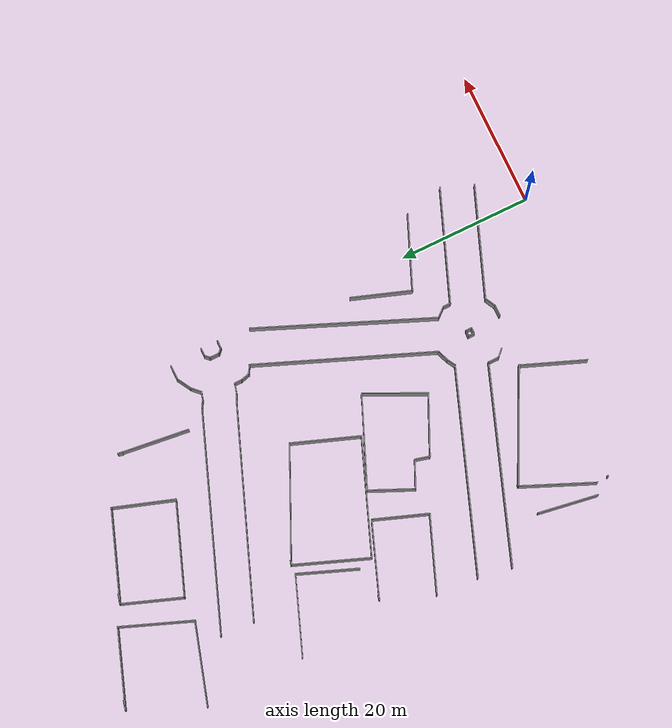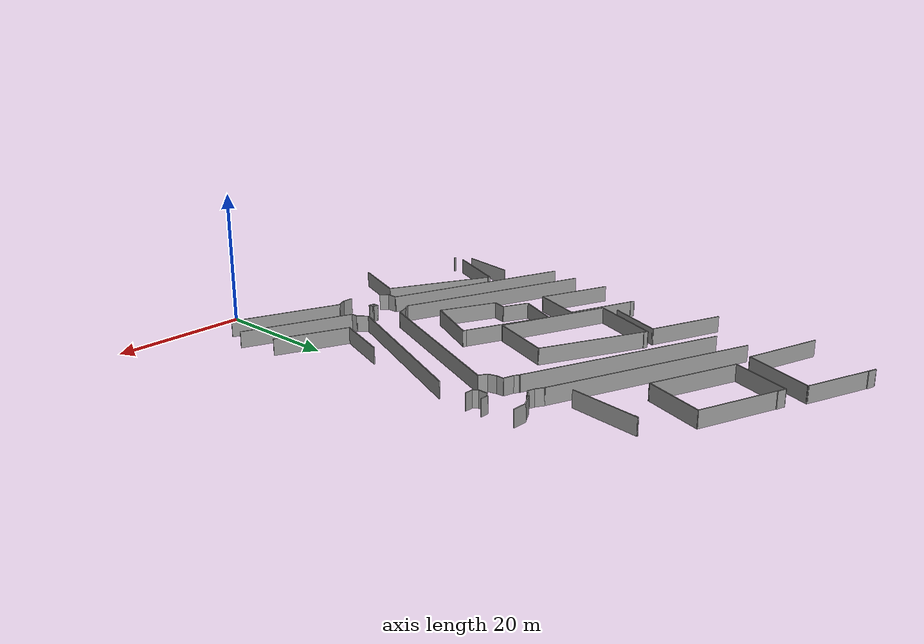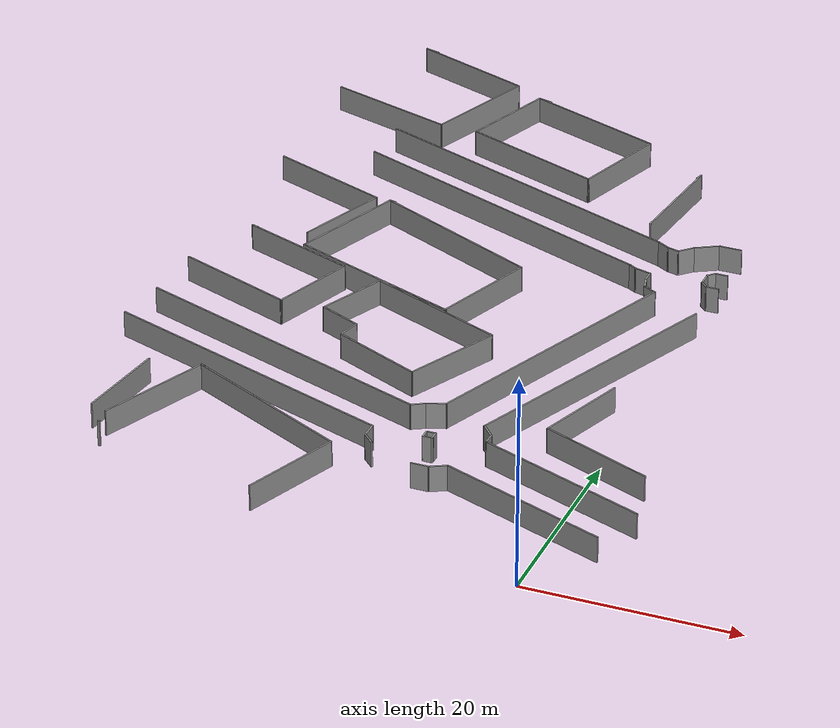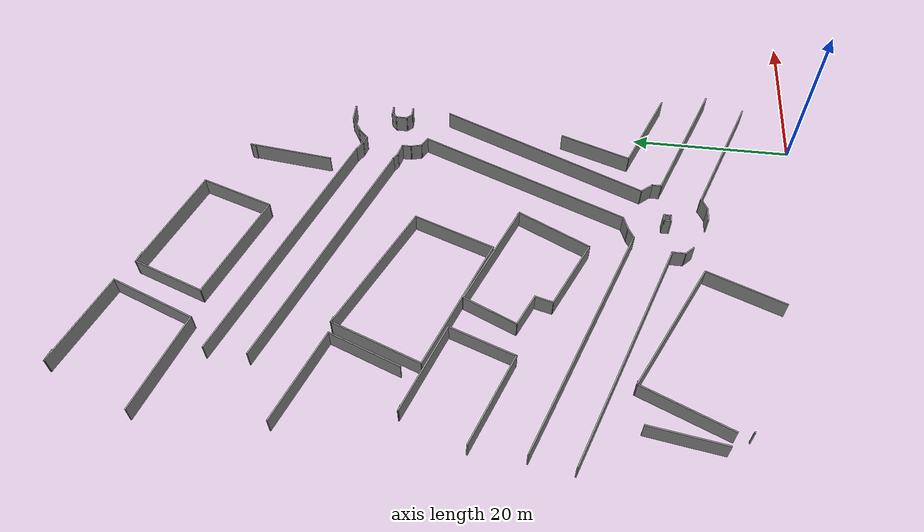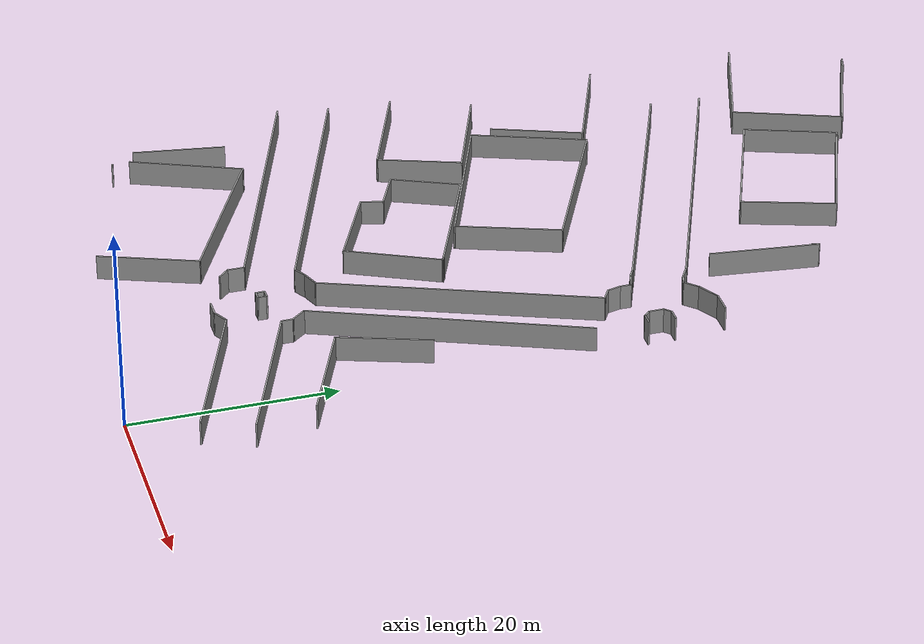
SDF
<sdf version="1.6">
 <model name="palazzo2">
  <pose>-3.81107 -3.99805 0 0 -0 0</pose>
  <link name="Wall_103">
   <collision name="Wall_103_Collision">
    <geometry><box><size>1.25 0.15 2.5</size></box></geometry>
    <pose>0 0 1.25 0 -0 0</pose>
   </collision>
   <visual name="Wall_103_Visual">
    <pose>0 0 1.25 0 -0 0</pose>
    <geometry><box><size>1.25 0.15 2.5</size></box></geometry>
    <material>
     <script><uri>file://media/materials/scripts/gazebo.material</uri><name>Gazebo/Grey</name></script>
     <ambient>1 1 1 1</ambient>
    </material>
    <meta><layer>0</layer></meta>
   </visual>
   <pose>3.65648 53.494 0 0 -0 3.14159</pose>
  </link>
  <link name="Wall_104">
   <collision name="Wall_104_Collision">
    <geometry><box><size>1 0.15 2.5</size></box></geometry>
    <pose>0 0 1.25 0 -0 0</pose>
   </collision>
   <visual name="Wall_104_Visual">
    <pose>0 0 1.25 0 -0 0</pose>
    <geometry><box><size>1 0.15 2.5</size></box></geometry>
    <material>
     <script><uri>file://media/materials/scripts/gazebo.material</uri><name>Gazebo/Grey</name></script>
     <ambient>1 1 1 1</ambient>
    </material>
    <meta><layer>0</layer></meta>
   </visual>
   <pose>2.80596 53.7945 0 0 -0 2.35619</pose>
  </link>
  <link name="Wall_105">
   <collision name="Wall_105_Collision">
    <geometry><box><size>1.55251 0.15 2.5</size></box></geometry>
    <pose>0 0 1.25 0 -0 0</pose>
   </collision>
   <visual name="Wall_105_Visual">
    <pose>0 0 1.25 0 -0 0</pose>
    <geometry><box><size>1.55251 0.15 2.5</size></box></geometry>
    <material>
     <script><uri>file://media/materials/scripts/gazebo.material</uri><name>Gazebo/Grey</name></script>
     <ambient>1 1 1 1</ambient>
    </material>
    <meta><layer>0</layer></meta>
   </visual>
   <pose>2.50446 54.7963 0 0 -0 1.5722</pose>
  </link>
  <link name="Wall_107">
   <collision name="Wall_107_Collision">
    <geometry><box><size>27.4393 0.15 2.5</size></box></geometry>
    <pose>0 0 1.25 0 -0 0</pose>
   </collision>
   <visual name="Wall_107_Visual">
    <pose>0 0 1.25 0 -0 0</pose>
    <geometry><box><size>27.4393 0.15 2.5</size></box></geometry>
    <material>
     <script><uri>file://media/materials/scripts/gazebo.material</uri><name>Gazebo/Grey</name></script>
     <ambient>1 1 1 1</ambient>
    </material>
    <meta><layer>0</layer></meta>
   </visual>
   <pose>-1.37579 35.8973 0 0 -0 1.17687</pose>
  </link>
  <link name="Wall_110">
   <collision name="Wall_110_Collision">
    <geometry><box><size>27.4433 0.15 2.5</size></box></geometry>
    <pose>0 0 1.25 0 -0 0</pose>
   </collision>
   <visual name="Wall_110_Visual">
    <pose>0 0 1.25 0 -0 0</pose>
    <geometry><box><size>27.4433 0.15 2.5</size></box></geometry>
    <material>
     <script><uri>file://media/materials/scripts/gazebo.material</uri><name>Gazebo/Grey</name></script>
     <ambient>1 1 1 1</ambient>
    </material>
    <meta><layer>0</layer></meta>
   </visual>
   <pose>-5.98467 38.1714 0 0 -0 1.18986</pose>
  </link>
  <link name="Wall_112">
   <collision name="Wall_112_Collision">
    <geometry><box><size>1.5 0.15 2.5</size></box></geometry>
    <pose>0 0 1.25 0 -0 0</pose>
   </collision>
   <visual name="Wall_112_Visual">
    <pose>0 0 1.25 0 -0 0</pose>
    <geometry><box><size>1.5 0.15 2.5</size></box></geometry>
    <material>
     <script><uri>file://media/materials/scripts/gazebo.material</uri><name>Gazebo/Grey</name></script>
     <ambient>1 1 1 1</ambient>
    </material>
    <meta><layer>0</layer></meta>
   </visual>
   <pose>-13.3123 24.552 0 0 -0 0.523599</pose>
  </link>
  <link name="Wall_113">
   <collision name="Wall_113_Collision">
    <geometry><box><size>1.92852 0.15 2.5</size></box></geometry>
    <pose>0 0 1.25 0 -0 0</pose>
   </collision>
   <visual name="Wall_113_Visual">
    <pose>0 0 1.25 0 -0 0</pose>
    <geometry><box><size>1.92852 0.15 2.5</size></box></geometry>
    <material>
     <script><uri>file://media/materials/scripts/gazebo.material</uri><name>Gazebo/Grey</name></script>
     <ambient>1 1 1 1</ambient>
    </material>
    <meta><layer>0</layer></meta>
   </visual>
   <pose>-11.893 25.1962 0 0 -0 0.352149</pose>
  </link>
  <link name="Wall_119">
   <collision name="Wall_119_Collision">
    <geometry><box><size>1.25 0.15 2.5</size></box></geometry>
    <pose>0 0 1.25 0 -0 0</pose>
   </collision>
   <visual name="Wall_119_Visual">
    <pose>0 0 1.25 0 -0 0</pose>
    <geometry><box><size>1.25 0.15 2.5</size></box></geometry>
    <material>
     <script><uri>file://media/materials/scripts/gazebo.material</uri><name>Gazebo/Grey</name></script>
     <ambient>1 1 1 1</ambient>
    </material>
    <meta><layer>0</layer></meta>
   </visual>
   <pose>-5.48076 21.4011 0 0 -0 1.5708</pose>
  </link>
  <link name="Wall_120">
   <collision name="Wall_120_Collision">
    <geometry><box><size>1.90927 0.15 2.5</size></box></geometry>
    <pose>0 0 1.25 0 -0 0</pose>
   </collision>
   <visual name="Wall_120_Visual">
    <pose>0 0 1.25 0 -0 0</pose>
    <geometry><box><size>1.90927 0.15 2.5</size></box></geometry>
    <material>
     <script><uri>file://media/materials/scripts/gazebo.material</uri><name>Gazebo/Grey</name></script>
     <ambient>1 1 1 1</ambient>
    </material>
    <meta><layer>0</layer></meta>
   </visual>
   <pose>-6.04681 22.6244 0 0 -0 2.26988</pose>
  </link>
  <link name="Wall_122">
   <collision name="Wall_122_Collision">
    <geometry><box><size>17.2432 0.15 2.5</size></box></geometry>
    <pose>0 0 1.25 0 -0 0</pose>
   </collision>
   <visual name="Wall_122_Visual">
    <pose>0 0 1.25 0 -0 0</pose>
    <geometry><box><size>17.2432 0.15 2.5</size></box></geometry>
    <material>
     <script><uri>file://media/materials/scripts/gazebo.material</uri><name>Gazebo/Grey</name></script>
     <ambient>1 1 1 1</ambient>
    </material>
    <meta><layer>0</layer></meta>
   </visual>
   <pose>2.49205 17.7724 0 0 -0 2.77308</pose>
  </link>
  <link name="Wall_131">
   <collision name="Wall_131_Collision">
    <geometry><box><size>17.0401 0.15 2.5</size></box></geometry>
    <pose>0 0 1.25 0 -0 0</pose>
   </collision>
   <visual name="Wall_131_Visual">
    <pose>0 0 1.25 0 -0 0</pose>
    <geometry><box><size>17.0401 0.15 2.5</size></box></geometry>
    <material>
     <script><uri>file://media/materials/scripts/gazebo.material</uri><name>Gazebo/Grey</name></script>
     <ambient>1 1 1 1</ambient>
    </material>
    <meta><layer>0</layer></meta>
   </visual>
   <pose>0.769019 12.9844 0 0 -0 -0.362836</pose>
  </link>
  <link name="Wall_133">
   <collision name="Wall_133_Collision">
    <geometry><box><size>1.75 0.15 2.5</size></box></geometry>
    <pose>0 0 1.25 0 -0 0</pose>
   </collision>
   <visual name="Wall_133_Visual">
    <pose>0 0 1.25 0 -0 0</pose>
    <geometry><box><size>1.75 0.15 2.5</size></box></geometry>
    <material>
     <script><uri>file://media/materials/scripts/gazebo.material</uri><name>Gazebo/Grey</name></script>
     <ambient>1 1 1 1</ambient>
    </material>
    <meta><layer>0</layer></meta>
   </visual>
   <pose>-9.38553 15.217 0 0 -0 0</pose>
  </link>
  <link name="Wall_134">
   <collision name="Wall_134_Collision">
    <geometry><box><size>1.79759 0.15 2.5</size></box></geometry>
    <pose>0 0 1.25 0 -0 0</pose>
   </collision>
   <visual name="Wall_134_Visual">
    <pose>0 0 1.25 0 -0 0</pose>
    <geometry><box><size>1.79759 0.15 2.5</size></box></geometry>
    <material>
     <script><uri>file://media/materials/scripts/gazebo.material</uri><name>Gazebo/Grey</name></script>
     <ambient>1 1 1 1</ambient>
    </material>
    <meta><layer>0</layer></meta>
   </visual>
   <pose>-7.85587 15.5994 0 0 -0 0.482742</pose>
  </link>
  <link name="Wall_137">
   <collision name="Wall_137_Collision">
    <geometry><box><size>1.5 0.15 2.5</size></box></geometry>
    <pose>0 0 1.25 0 -0 0</pose>
   </collision>
   <visual name="Wall_137_Visual">
    <pose>0 0 1.25 0 -0 0</pose>
    <geometry><box><size>1.5 0.15 2.5</size></box></geometry>
    <material>
     <script><uri>file://media/materials/scripts/gazebo.material</uri><name>Gazebo/Grey</name></script>
     <ambient>1 1 1 1</ambient>
    </material>
    <meta><layer>0</layer></meta>
   </visual>
   <pose>-15.131 17.6063 0 0 -0 2.35619</pose>
  </link>
  <link name="Wall_138">
   <collision name="Wall_138_Collision">
    <geometry><box><size>1.75 0.15 2.5</size></box></geometry>
    <pose>0 0 1.25 0 -0 0</pose>
   </collision>
   <visual name="Wall_138_Visual">
    <pose>0 0 1.25 0 -0 0</pose>
    <geometry><box><size>1.75 0.15 2.5</size></box></geometry>
    <material>
     <script><uri>file://media/materials/scripts/gazebo.material</uri><name>Gazebo/Grey</name></script>
     <ambient>1 1 1 1</ambient>
    </material>
    <meta><layer>0</layer></meta>
   </visual>
   <pose>-15.6083 18.8836 0 0 -0 1.5708</pose>
  </link>
  <link name="Wall_142">
   <collision name="Wall_142_Collision">
    <geometry><box><size>30.0132 0.15 2.5</size></box></geometry>
    <pose>0 0 1.25 0 -0 0</pose>
   </collision>
   <visual name="Wall_142_Visual">
    <pose>0 0 1.25 0 -0 0</pose>
    <geometry><box><size>30.0132 0.15 2.5</size></box></geometry>
    <material>
     <script><uri>file://media/materials/scripts/gazebo.material</uri><name>Gazebo/Grey</name></script>
     <ambient>1 1 1 1</ambient>
    </material>
    <meta><layer>0</layer></meta>
   </visual>
   <pose>-29.6687 24.7095 0 0 -0 -0.343294</pose>
  </link>
  <link name="Wall_144">
   <collision name="Wall_144_Collision">
    <geometry><box><size>31.0112 0.15 2.5</size></box></geometry>
    <pose>0 0 1.25 0 -0 0</pose>
   </collision>
   <visual name="Wall_144_Visual">
    <pose>0 0 1.25 0 -0 0</pose>
    <geometry><box><size>31.0112 0.15 2.5</size></box></geometry>
    <material>
     <script><uri>file://media/materials/scripts/gazebo.material</uri><name>Gazebo/Grey</name></script>
     <ambient>1 1 1 1</ambient>
    </material>
    <meta><layer>0</layer></meta>
   </visual>
   <pose>-28.3905 29.5095 0 0 -0 -0.350266</pose>
  </link>
  <link name="Wall_159">
   <collision name="Wall_159_Collision">
    <geometry><box><size>1 0.15 2.5</size></box></geometry>
    <pose>0 0 1.25 0 -0 0</pose>
   </collision>
   <visual name="Wall_159_Visual">
    <pose>0 0 1.25 0 -0 0</pose>
    <geometry><box><size>1 0.15 2.5</size></box></geometry>
    <material>
     <script><uri>file://media/materials/scripts/gazebo.material</uri><name>Gazebo/Grey</name></script>
     <ambient>1 1 1 1</ambient>
    </material>
    <meta><layer>0</layer></meta>
   </visual>
   <pose>-10.4841 20.558 0 0 -0 0</pose>
  </link>
  <link name="Wall_160">
   <collision name="Wall_160_Collision">
    <geometry><box><size>1 0.15 2.5</size></box></geometry>
    <pose>0 0 1.25 0 -0 0</pose>
   </collision>
   <visual name="Wall_160_Visual">
    <pose>0 0 1.25 0 -0 0</pose>
    <geometry><box><size>1 0.15 2.5</size></box></geometry>
    <material>
     <script><uri>file://media/materials/scripts/gazebo.material</uri><name>Gazebo/Grey</name></script>
     <ambient>1 1 1 1</ambient>
    </material>
    <meta><layer>0</layer></meta>
   </visual>
   <pose>-10.0591 20.133 0 0 -0 -1.5708</pose>
  </link>
  <link name="Wall_161">
   <collision name="Wall_161_Collision">
    <geometry><box><size>1 0.15 2.5</size></box></geometry>
    <pose>0 0 1.25 0 -0 0</pose>
   </collision>
   <visual name="Wall_161_Visual">
    <pose>0 0 1.25 0 -0 0</pose>
    <geometry><box><size>1 0.15 2.5</size></box></geometry>
    <material>
     <script><uri>file://media/materials/scripts/gazebo.material</uri><name>Gazebo/Grey</name></script>
     <ambient>1 1 1 1</ambient>
    </material>
    <meta><layer>0</layer></meta>
   </visual>
   <pose>-10.4841 19.708 0 0 -0 3.14159</pose>
  </link>
  <link name="Wall_162">
   <collision name="Wall_162_Collision">
    <geometry><box><size>1 0.15 2.5</size></box></geometry>
    <pose>0 0 1.25 0 -0 0</pose>
   </collision>
   <visual name="Wall_162_Visual">
    <pose>0 0 1.25 0 -0 0</pose>
    <geometry><box><size>1 0.15 2.5</size></box></geometry>
    <material>
     <script><uri>file://media/materials/scripts/gazebo.material</uri><name>Gazebo/Grey</name></script>
     <ambient>1 1 1 1</ambient>
    </material>
    <meta><layer>0</layer></meta>
   </visual>
   <pose>-10.9091 20.133 0 0 -0 1.5708</pose>
  </link>
  <link name="Wall_335">
   <collision name="Wall_335_Collision">
    <geometry><box><size>0.75 0.15 2.5</size></box></geometry>
    <pose>0 0 1.25 0 -0 0</pose>
   </collision>
   <visual name="Wall_335_Visual">
    <pose>0 0 1.25 0 -0 0</pose>
    <geometry><box><size>0.75 0.15 2.5</size></box></geometry>
    <material>
     <script><uri>file://media/materials/scripts/gazebo.material</uri><name>Gazebo/Grey</name></script>
     <ambient>1 1 1 1</ambient>
    </material>
    <meta><layer>0</layer></meta>
   </visual>
   <pose>-4.42959 73.0879 0 0 -0 -1.8326</pose>
  </link>
  <link name="Wall_337">
   <collision name="Wall_337_Collision">
    <geometry><box><size>10.7826 0.15 2.5</size></box></geometry>
    <pose>0 0 1.25 0 -0 0</pose>
   </collision>
   <visual name="Wall_337_Visual">
    <pose>0 0 1.25 0 -0 0</pose>
    <geometry><box><size>10.7826 0.15 2.5</size></box></geometry>
    <material>
     <script><uri>file://media/materials/scripts/gazebo.material</uri><name>Gazebo/Grey</name></script>
     <ambient>1 1 1 1</ambient>
    </material>
    <meta><layer>0</layer></meta>
   </visual>
   <pose>-4.9693 68.0973 0 0 -0 1.45441</pose>
  </link>
  <link name="Wall_352">
   <collision name="Wall_352_Collision">
    <geometry><box><size>1.5 0.15 2.5</size></box></geometry>
    <pose>0 0 1.25 0 -0 0</pose>
   </collision>
   <visual name="Wall_352_Visual">
    <pose>0 0 1.25 0 -0 0</pose>
    <geometry><box><size>1.5 0.15 2.5</size></box></geometry>
    <material>
     <script><uri>file://media/materials/scripts/gazebo.material</uri><name>Gazebo/Grey</name></script>
     <ambient>1 1 1 1</ambient>
    </material>
    <meta><layer>0</layer></meta>
   </visual>
   <pose>-23.3119 82.2089 0 0 -0 -0.261799</pose>
  </link>
  <link name="Wall_354">
   <collision name="Wall_354_Collision">
    <geometry><box><size>14.0049 0.15 2.5</size></box></geometry>
    <pose>0 0 1.25 0 -0 0</pose>
   </collision>
   <visual name="Wall_354_Visual">
    <pose>0 0 1.25 0 -0 0</pose>
    <geometry><box><size>14.0049 0.15 2.5</size></box></geometry>
    <material>
     <script><uri>file://media/materials/scripts/gazebo.material</uri><name>Gazebo/Grey</name></script>
     <ambient>1 1 1 1</ambient>
    </material>
    <meta><layer>0</layer></meta>
   </visual>
   <pose>-17.462 79.993 0 0 -0 2.78926</pose>
  </link>
  <link name="Wall_356">
   <collision name="Wall_356_Collision">
    <geometry><box><size>9.47922 0.15 2.5</size></box></geometry>
    <pose>0 0 1.25 0 -0 0</pose>
   </collision>
   <visual name="Wall_356_Visual">
    <pose>0 0 1.25 0 -0 0</pose>
    <geometry><box><size>9.47922 0.15 2.5</size></box></geometry>
    <material>
     <script><uri>file://media/materials/scripts/gazebo.material</uri><name>Gazebo/Grey</name></script>
     <ambient>1 1 1 1</ambient>
    </material>
    <meta><layer>0</layer></meta>
   </visual>
   <pose>-12.4312 73.1759 0 0 -0 1.24994</pose>
  </link>
  <link name="Wall_358">
   <collision name="Wall_358_Collision">
    <geometry><box><size>9.37459 0.15 2.5</size></box></geometry>
    <pose>0 0 1.25 0 -0 0</pose>
   </collision>
   <visual name="Wall_358_Visual">
    <pose>0 0 1.25 0 -0 0</pose>
    <geometry><box><size>9.37459 0.15 2.5</size></box></geometry>
    <material>
     <script><uri>file://media/materials/scripts/gazebo.material</uri><name>Gazebo/Grey</name></script>
     <ambient>1 1 1 1</ambient>
    </material>
    <meta><layer>0</layer></meta>
   </visual>
   <pose>-25.5401 78.049 0 0 -0 1.22202</pose>
  </link>
  <link name="Wall_360">
   <collision name="Wall_360_Collision">
    <geometry><box><size>14.266 0.15 2.5</size></box></geometry>
    <pose>0 0 1.25 0 -0 0</pose>
   </collision>
   <visual name="Wall_360_Visual">
    <pose>0 0 1.25 0 -0 0</pose>
    <geometry><box><size>14.266 0.15 2.5</size></box></geometry>
    <material>
     <script><uri>file://media/materials/scripts/gazebo.material</uri><name>Gazebo/Grey</name></script>
     <ambient>1 1 1 1</ambient>
    </material>
    <meta><layer>0</layer></meta>
   </visual>
   <pose>-20.5094 71.2319 0 0 -0 2.78217</pose>
  </link>
  <link name="Wall_363">
   <collision name="Wall_363_Collision">
    <geometry><box><size>1.5 0.15 2.5</size></box></geometry>
    <pose>0 0 1.25 0 -0 0</pose>
   </collision>
   <visual name="Wall_363_Visual">
    <pose>0 0 1.25 0 -0 0</pose>
    <geometry><box><size>1.5 0.15 2.5</size></box></geometry>
    <material>
     <script><uri>file://media/materials/scripts/gazebo.material</uri><name>Gazebo/Grey</name></script>
     <ambient>1 1 1 1</ambient>
    </material>
    <meta><layer>0</layer></meta>
   </visual>
   <pose>-37.3068 87.9775 0 0 -0 -0.261799</pose>
  </link>
  <link name="Wall_365">
   <collision name="Wall_365_Collision">
    <geometry><box><size>12.0484 0.15 2.5</size></box></geometry>
    <pose>0 0 1.25 0 -0 0</pose>
   </collision>
   <visual name="Wall_365_Visual">
    <pose>0 0 1.25 0 -0 0</pose>
    <geometry><box><size>12.0484 0.15 2.5</size></box></geometry>
    <material>
     <script><uri>file://media/materials/scripts/gazebo.material</uri><name>Gazebo/Grey</name></script>
     <ambient>1 1 1 1</ambient>
    </material>
    <meta><layer>0</layer></meta>
   </visual>
   <pose>-32.3713 86.1095 0 0 -0 2.7911</pose>
  </link>
  <link name="Wall_367">
   <collision name="Wall_367_Collision">
    <geometry><box><size>11.1625 0.15 2.5</size></box></geometry>
    <pose>0 0 1.25 0 -0 0</pose>
   </collision>
   <visual name="Wall_367_Visual">
    <pose>0 0 1.25 0 -0 0</pose>
    <geometry><box><size>11.1625 0.15 2.5</size></box></geometry>
    <material>
     <script><uri>file://media/materials/scripts/gazebo.material</uri><name>Gazebo/Grey</name></script>
     <ambient>1 1 1 1</ambient>
    </material>
    <meta><layer>0</layer></meta>
   </visual>
   <pose>-28.7665 78.9299 0 0 -0 1.20245</pose>
  </link>
  <link name="Wall_371">
   <collision name="Wall_371_Collision">
    <geometry><box><size>12.569 0.15 2.5</size></box></geometry>
    <pose>0 0 1.25 0 -0 0</pose>
   </collision>
   <visual name="Wall_371_Visual">
    <pose>0 0 1.25 0 -0 0</pose>
    <geometry><box><size>12.569 0.15 2.5</size></box></geometry>
    <material>
     <script><uri>file://media/materials/scripts/gazebo.material</uri><name>Gazebo/Grey</name></script>
     <ambient>1 1 1 1</ambient>
    </material>
    <meta><layer>0</layer></meta>
   </visual>
   <pose>-36.6821 75.6254 0 0 -0 -0.299566</pose>
  </link>
  <link name="Wall_431">
   <collision name="Wall_431_Collision">
    <geometry><box><size>9.21573 0.15 2.5</size></box></geometry>
    <pose>0 0 1.25 0 -0 0</pose>
   </collision>
   <visual name="Wall_431_Visual">
    <pose>0 0 1.25 0 -0 0</pose>
    <geometry><box><size>9.21573 0.15 2.5</size></box></geometry>
    <material>
     <script><uri>file://media/materials/scripts/gazebo.material</uri><name>Gazebo/Grey</name></script>
     <ambient>1 1 1 1</ambient>
    </material>
    <meta><layer>0</layer></meta>
   </visual>
   <pose>0.089983 29.2165 0 0 -0 1.23637</pose>
  </link>
  <link name="Wall_435">
   <collision name="Wall_435_Collision">
    <geometry><box><size>11.434 0.15 2.5</size></box></geometry>
    <pose>0 0 1.25 0 -0 0</pose>
   </collision>
   <visual name="Wall_435_Visual">
    <pose>0 0 1.25 0 -0 0</pose>
    <geometry><box><size>11.434 0.15 2.5</size></box></geometry>
    <material>
     <script><uri>file://media/materials/scripts/gazebo.material</uri><name>Gazebo/Grey</name></script>
     <ambient>1 1 1 1</ambient>
    </material>
    <meta><layer>0</layer></meta>
   </visual>
   <pose>3.81521 22.7769 0 0 -0 -0.392468</pose>
  </link>
  <link name="Wall_447">
   <collision name="Wall_447_Collision">
    <geometry><box><size>0.5 0.15 2.5</size></box></geometry>
    <pose>0 0 1.25 0 -0 0</pose>
   </collision>
   <visual name="Wall_447_Visual">
    <pose>0 0 1.25 0 -0 0</pose>
    <geometry><box><size>0.5 0.15 2.5</size></box></geometry>
    <material>
     <script><uri>file://media/materials/scripts/gazebo.material</uri><name>Gazebo/Grey</name></script>
     <ambient>1 1 1 1</ambient>
    </material>
    <meta><layer>0</layer></meta>
   </visual>
   <pose>-11.8512 38.2044 0 0 -0 2.61799</pose>
  </link>
  <link name="Wall_449">
   <collision name="Wall_449_Collision">
    <geometry><box><size>9.76072 0.15 2.5</size></box></geometry>
    <pose>0 0 1.25 0 -0 0</pose>
   </collision>
   <visual name="Wall_449_Visual">
    <pose>0 0 1.25 0 -0 0</pose>
    <geometry><box><size>9.76072 0.15 2.5</size></box></geometry>
    <material>
     <script><uri>file://media/materials/scripts/gazebo.material</uri><name>Gazebo/Grey</name></script>
     <ambient>1 1 1 1</ambient>
    </material>
    <meta><layer>0</layer></meta>
   </visual>
   <pose>-13.7894 33.7897 0 0 -0 1.12089</pose>
  </link>
  <link name="Wall_451">
   <collision name="Wall_451_Collision">
    <geometry><box><size>14.2314 0.15 2.5</size></box></geometry>
    <pose>0 0 1.25 0 -0 0</pose>
   </collision>
   <visual name="Wall_451_Visual">
    <pose>0 0 1.25 0 -0 0</pose>
    <geometry><box><size>14.2314 0.15 2.5</size></box></geometry>
    <material>
     <script><uri>file://media/materials/scripts/gazebo.material</uri><name>Gazebo/Grey</name></script>
     <ambient>1 1 1 1</ambient>
    </material>
    <meta><layer>0</layer></meta>
   </visual>
   <pose>-18.1961 40.8313 0 0 -0 -0.395784</pose>
  </link>
  <link name="Wall_453">
   <collision name="Wall_453_Collision">
    <geometry><box><size>7.09441 0.15 2.5</size></box></geometry>
    <pose>0 0 1.25 0 -0 0</pose>
   </collision>
   <visual name="Wall_453_Visual">
    <pose>0 0 1.25 0 -0 0</pose>
    <geometry><box><size>7.09441 0.15 2.5</size></box></geometry>
    <material>
     <script><uri>file://media/materials/scripts/gazebo.material</uri><name>Gazebo/Grey</name></script>
     <ambient>1 1 1 1</ambient>
    </material>
    <meta><layer>0</layer></meta>
   </visual>
   <pose>-26.1122 40.377 0 0 -0 1.14958</pose>
  </link>
  <link name="Wall_455">
   <collision name="Wall_455_Collision">
    <geometry><box><size>9.32773 0.15 2.5</size></box></geometry>
    <pose>0 0 1.25 0 -0 0</pose>
   </collision>
   <visual name="Wall_455_Visual">
    <pose>0 0 1.25 0 -0 0</pose>
    <geometry><box><size>9.32773 0.15 2.5</size></box></geometry>
    <material>
     <script><uri>file://media/materials/scripts/gazebo.material</uri><name>Gazebo/Grey</name></script>
     <ambient>1 1 1 1</ambient>
    </material>
    <meta><layer>0</layer></meta>
   </visual>
   <pose>-20.0473 31.3819 0 0 -0 -0.431543</pose>
  </link>
  <link name="Wall_457">
   <collision name="Wall_457_Collision">
    <geometry><box><size>4.41923 0.15 2.5</size></box></geometry>
    <pose>0 0 1.25 0 -0 0</pose>
   </collision>
   <visual name="Wall_457_Visual">
    <pose>0 0 1.25 0 -0 0</pose>
    <geometry><box><size>4.41923 0.15 2.5</size></box></geometry>
    <material>
     <script><uri>file://media/materials/scripts/gazebo.material</uri><name>Gazebo/Grey</name></script>
     <ambient>1 1 1 1</ambient>
    </material>
    <meta><layer>0</layer></meta>
   </visual>
   <pose>-25.5897 36.3224 0 0 -0 2.71364</pose>
  </link>
  <link name="Wall_459">
   <collision name="Wall_459_Collision">
    <geometry><box><size>2.35941 0.15 2.5</size></box></geometry>
    <pose>0 0 1.25 0 -0 0</pose>
   </collision>
   <visual name="Wall_459_Visual">
    <pose>0 0 1.25 0 -0 0</pose>
    <geometry><box><size>2.35941 0.15 2.5</size></box></geometry>
    <material>
     <script><uri>file://media/materials/scripts/gazebo.material</uri><name>Gazebo/Grey</name></script>
     <ambient>1 1 1 1</ambient>
    </material>
    <meta><layer>0</layer></meta>
   </visual>
   <pose>-23.9315 34.3689 0 0 -0 1.31086</pose>
  </link>
  <link name="Wall_461">
   <collision name="Wall_461_Collision">
    <geometry><box><size>0.75 0.15 2.5</size></box></geometry>
    <pose>0 0 1.25 0 -0 0</pose>
   </collision>
   <visual name="Wall_461_Visual">
    <pose>0 0 1.25 0 -0 0</pose>
    <geometry><box><size>0.75 0.15 2.5</size></box></geometry>
    <material>
     <script><uri>file://media/materials/scripts/gazebo.material</uri><name>Gazebo/Grey</name></script>
     <ambient>1 1 1 1</ambient>
    </material>
    <meta><layer>0</layer></meta>
   </visual>
   <pose>-39.2355 48.7606 0 0 -0 -0.261799</pose>
  </link>
  <link name="Wall_463">
   <collision name="Wall_463_Collision">
    <geometry><box><size>11.6722 0.15 2.5</size></box></geometry>
    <pose>0 0 1.25 0 -0 0</pose>
   </collision>
   <visual name="Wall_463_Visual">
    <pose>0 0 1.25 0 -0 0</pose>
    <geometry><box><size>11.6722 0.15 2.5</size></box></geometry>
    <material>
     <script><uri>file://media/materials/scripts/gazebo.material</uri><name>Gazebo/Grey</name></script>
     <ambient>1 1 1 1</ambient>
    </material>
    <meta><layer>0</layer></meta>
   </visual>
   <pose>-34.1305 46.8166 0 0 -0 2.78305</pose>
  </link>
  <link name="Wall_467">
   <collision name="Wall_467_Collision">
    <geometry><box><size>8.51422 0.15 2.5</size></box></geometry>
    <pose>0 0 1.25 0 -0 0</pose>
   </collision>
   <visual name="Wall_467_Visual">
    <pose>0 0 1.25 0 -0 0</pose>
    <geometry><box><size>8.51422 0.15 2.5</size></box></geometry>
    <material>
     <script><uri>file://media/materials/scripts/gazebo.material</uri><name>Gazebo/Grey</name></script>
     <ambient>1 1 1 1</ambient>
    </material>
    <meta><layer>0</layer></meta>
   </visual>
   <pose>-30.1667 40.8654 0 0 -0 1.22156</pose>
  </link>
  <link name="Wall_469">
   <collision name="Wall_469_Collision">
    <geometry><box><size>11.8854 0.15 2.5</size></box></geometry>
    <pose>0 0 1.25 0 -0 0</pose>
   </collision>
   <visual name="Wall_469_Visual">
    <pose>0 0 1.25 0 -0 0</pose>
    <geometry><box><size>11.8854 0.15 2.5</size></box></geometry>
    <material>
     <script><uri>file://media/materials/scripts/gazebo.material</uri><name>Gazebo/Grey</name></script>
     <ambient>1 1 1 1</ambient>
    </material>
    <meta><layer>0</layer></meta>
   </visual>
   <pose>-37.072 39.0482 0 0 -0 -0.368286</pose>
  </link>
  <link name="Wall_471">
   <collision name="Wall_471_Collision">
    <geometry><box><size>0.75 0.15 2.5</size></box></geometry>
    <pose>0 0 1.25 0 -0 0</pose>
   </collision>
   <visual name="Wall_471_Visual">
    <pose>0 0 1.25 0 -0 0</pose>
    <geometry><box><size>0.75 0.15 2.5</size></box></geometry>
    <material>
     <script><uri>file://media/materials/scripts/gazebo.material</uri><name>Gazebo/Grey</name></script>
     <ambient>1 1 1 1</ambient>
    </material>
    <meta><layer>0</layer></meta>
   </visual>
   <pose>-29.2864 57.9147 0 0 -0 -0.261799</pose>
  </link>
  <link name="Wall_473">
   <collision name="Wall_473_Collision">
    <geometry><box><size>17.6599 0.15 2.5</size></box></geometry>
    <pose>0 0 1.25 0 -0 0</pose>
   </collision>
   <visual name="Wall_473_Visual">
    <pose>0 0 1.25 0 -0 0</pose>
    <geometry><box><size>17.6599 0.15 2.5</size></box></geometry>
    <material>
     <script><uri>file://media/materials/scripts/gazebo.material</uri><name>Gazebo/Grey</name></script>
     <ambient>1 1 1 1</ambient>
    </material>
    <meta><layer>0</layer></meta>
   </visual>
   <pose>-21.6373 54.3011 0 0 -0 2.70638</pose>
  </link>
  <link name="Wall_475">
   <collision name="Wall_475_Collision">
    <geometry><box><size>11.7175 0.15 2.5</size></box></geometry>
    <pose>0 0 1.25 0 -0 0</pose>
   </collision>
   <visual name="Wall_475_Visual">
    <pose>0 0 1.25 0 -0 0</pose>
    <geometry><box><size>11.7175 0.15 2.5</size></box></geometry>
    <material>
     <script><uri>file://media/materials/scripts/gazebo.material</uri><name>Gazebo/Grey</name></script>
     <ambient>1 1 1 1</ambient>
    </material>
    <meta><layer>0</layer></meta>
   </visual>
   <pose>-31.6318 52.5862 0 0 -0 1.20743</pose>
  </link>
  <link name="Wall_477">
   <collision name="Wall_477_Collision">
    <geometry><box><size>17.7532 0.15 2.5</size></box></geometry>
    <pose>0 0 1.25 0 -0 0</pose>
   </collision>
   <visual name="Wall_477_Visual">
    <pose>0 0 1.25 0 -0 0</pose>
    <geometry><box><size>17.7532 0.15 2.5</size></box></geometry>
    <material>
     <script><uri>file://media/materials/scripts/gazebo.material</uri><name>Gazebo/Grey</name></script>
     <ambient>1 1 1 1</ambient>
    </material>
    <meta><layer>0</layer></meta>
   </visual>
   <pose>-25.4761 44.0113 0 0 -0 2.77331</pose>
  </link>
  <link name="Wall_479">
   <collision name="Wall_479_Collision">
    <geometry><box><size>10.548 0.15 2.5</size></box></geometry>
    <pose>0 0 1.25 0 -0 0</pose>
   </collision>
   <visual name="Wall_479_Visual">
    <pose>0 0 1.25 0 -0 0</pose>
    <geometry><box><size>10.548 0.15 2.5</size></box></geometry>
    <material>
     <script><uri>file://media/materials/scripts/gazebo.material</uri><name>Gazebo/Grey</name></script>
     <ambient>1 1 1 1</ambient>
    </material>
    <meta><layer>0</layer></meta>
   </visual>
   <pose>-15.4816 45.7263 0 0 -0 1.22072</pose>
  </link>
  <link name="Wall_488">
   <collision name="Wall_488_Collision">
    <geometry><box><size>9.33785 0.15 2.5</size></box></geometry>
    <pose>0 0 1.25 0 -0 0</pose>
   </collision>
   <visual name="Wall_488_Visual">
    <pose>0 0 1.25 0 -0 0</pose>
    <geometry><box><size>9.33785 0.15 2.5</size></box></geometry>
    <material>
     <script><uri>file://media/materials/scripts/gazebo.material</uri><name>Gazebo/Grey</name></script>
     <ambient>1 1 1 1</ambient>
    </material>
    <meta><layer>0</layer></meta>
   </visual>
   <pose>-32.6446 53.7188 0 0 -0 -1.94022</pose>
  </link>
  <link name="Wall_490">
   <collision name="Wall_490_Collision">
    <geometry><box><size>12.1473 0.15 2.5</size></box></geometry>
    <pose>0 0 1.25 0 -0 0</pose>
   </collision>
   <visual name="Wall_490_Visual">
    <pose>0 0 1.25 0 -0 0</pose>
    <geometry><box><size>12.1473 0.15 2.5</size></box></geometry>
    <material>
     <script><uri>file://media/materials/scripts/gazebo.material</uri><name>Gazebo/Grey</name></script>
     <ambient>1 1 1 1</ambient>
    </material>
    <meta><layer>0</layer></meta>
   </visual>
   <pose>-36.589 60.1448 0 0 -0 -0.365142</pose>
  </link>
  <link name="Wall_602">
   <collision name="Wall_602_Collision">
    <geometry><box><size>0.5 0.15 2.5</size></box></geometry>
    <pose>0 0 1.25 0 -0 0</pose>
   </collision>
   <visual name="Wall_602_Visual">
    <pose>0 0 1.25 0 -0 0</pose>
    <geometry><box><size>0.5 0.15 2.5</size></box></geometry>
    <material>
     <script><uri>file://media/materials/scripts/gazebo.material</uri><name>Gazebo/Grey</name></script>
     <ambient>1 1 1 1</ambient>
    </material>
    <meta><layer>0</layer></meta>
   </visual>
   <pose>-33.4384 23.7248 0 0 -0 -0.261799</pose>
  </link>
  <link name="Wall_604">
   <collision name="Wall_604_Collision">
    <geometry><box><size>17.6904 0.15 2.5</size></box></geometry>
    <pose>0 0 1.25 0 -0 0</pose>
   </collision>
   <visual name="Wall_604_Visual">
    <pose>0 0 1.25 0 -0 0</pose>
    <geometry><box><size>17.6904 0.15 2.5</size></box></geometry>
    <material>
     <script><uri>file://media/materials/scripts/gazebo.material</uri><name>Gazebo/Grey</name></script>
     <ambient>1 1 1 1</ambient>
    </material>
    <meta><layer>0</layer></meta>
   </visual>
   <pose>-25.7654 19.8433 0 0 -0 2.67736</pose>
  </link>
  <link name="Wall_606">
   <collision name="Wall_606_Collision">
    <geometry><box><size>11.4481 0.15 2.5</size></box></geometry>
    <pose>0 0 1.25 0 -0 0</pose>
   </collision>
   <visual name="Wall_606_Visual">
    <pose>0 0 1.25 0 -0 0</pose>
    <geometry><box><size>11.4481 0.15 2.5</size></box></geometry>
    <material>
     <script><uri>file://media/materials/scripts/gazebo.material</uri><name>Gazebo/Grey</name></script>
     <ambient>1 1 1 1</ambient>
    </material>
    <meta><layer>0</layer></meta>
   </visual>
   <pose>-35.8299 18.5766 0 0 -0 1.16644</pose>
  </link>
  <link name="Wall_608">
   <collision name="Wall_608_Collision">
    <geometry><box><size>10.0167 0.15 2.5</size></box></geometry>
    <pose>0 0 1.25 0 -0 0</pose>
   </collision>
   <visual name="Wall_608_Visual">
    <pose>0 0 1.25 0 -0 0</pose>
    <geometry><box><size>10.0167 0.15 2.5</size></box></geometry>
    <material>
     <script><uri>file://media/materials/scripts/gazebo.material</uri><name>Gazebo/Grey</name></script>
     <ambient>1 1 1 1</ambient>
    </material>
    <meta><layer>0</layer></meta>
   </visual>
   <pose>-19.7198 11.3219 0 0 -0 1.19809</pose>
  </link>
  <link name="Wall_61">
   <collision name="Wall_61_Collision">
    <geometry><box><size>1.75 0.15 2.5</size></box></geometry>
    <pose>0 0 1.25 0 -0 0</pose>
   </collision>
   <visual name="Wall_61_Visual">
    <pose>0 0 1.25 0 -0 0</pose>
    <geometry><box><size>1.75 0.15 2.5</size></box></geometry>
    <material>
     <script><uri>file://media/materials/scripts/gazebo.material</uri><name>Gazebo/Grey</name></script>
     <ambient>1 1 1 1</ambient>
    </material>
    <meta><layer>0</layer></meta>
   </visual>
   <pose>-0.876228 59.3523 0 0 -0 0.785398</pose>
  </link>
  <link name="Wall_62">
   <collision name="Wall_62_Collision">
    <geometry><box><size>2.5 0.15 2.5</size></box></geometry>
    <pose>0 0 1.25 0 -0 0</pose>
   </collision>
   <visual name="Wall_62_Visual">
    <pose>0 0 1.25 0 -0 0</pose>
    <geometry><box><size>2.5 0.15 2.5</size></box></geometry>
    <material>
     <script><uri>file://media/materials/scripts/gazebo.material</uri><name>Gazebo/Grey</name></script>
     <ambient>1 1 1 1</ambient>
    </material>
    <meta><layer>0</layer></meta>
   </visual>
   <pose>0.707037 60.5055 0 0 -0 0.523599</pose>
  </link>
  <link name="Wall_623">
   <collision name="Wall_623_Collision">
    <geometry><box><size>9.1326 0.15 2.5</size></box></geometry>
    <pose>0 0 1.25 0 -0 0</pose>
   </collision>
   <visual name="Wall_623_Visual">
    <pose>0 0 1.25 0 -0 0</pose>
    <geometry><box><size>9.1326 0.15 2.5</size></box></geometry>
    <material>
     <script><uri>file://media/materials/scripts/gazebo.material</uri><name>Gazebo/Grey</name></script>
     <ambient>1 1 1 1</ambient>
    </material>
    <meta><layer>0</layer></meta>
   </visual>
   <pose>-39.0088 18.5247 0 0 -0 1.41507</pose>
  </link>
  <link name="Wall_63">
   <collision name="Wall_63_Collision">
    <geometry><box><size>2.25 0.15 2.5</size></box></geometry>
    <pose>0 0 1.25 0 -0 0</pose>
   </collision>
   <visual name="Wall_63_Visual">
    <pose>0 0 1.25 0 -0 0</pose>
    <geometry><box><size>2.25 0.15 2.5</size></box></geometry>
    <material>
     <script><uri>file://media/materials/scripts/gazebo.material</uri><name>Gazebo/Grey</name></script>
     <ambient>1 1 1 1</ambient>
    </material>
    <meta><layer>0</layer></meta>
   </visual>
   <pose>2.77462 61.093 0 0 -0 0</pose>
  </link>
  <link name="Wall_649">
   <collision name="Wall_649_Collision">
    <geometry><box><size>0.25 0.15 2.5</size></box></geometry>
    <pose>0 0 1.25 0 -0 0</pose>
   </collision>
   <visual name="Wall_649_Visual">
    <pose>0 0 1.25 0 -0 0</pose>
    <geometry><box><size>0.25 0.15 2.5</size></box></geometry>
    <material>
     <script><uri>file://media/materials/scripts/gazebo.material</uri><name>Gazebo/Grey</name></script>
     <ambient>1 1 1 1</ambient>
    </material>
    <meta><layer>0</layer></meta>
   </visual>
   <pose>-37.9005 11.5914 0 0 -0 -0.261799</pose>
  </link>
  <link name="Wall_75">
   <collision name="Wall_75_Collision">
    <geometry><box><size>1.25 0.15 2.5</size></box></geometry>
    <pose>0 0 1.25 0 -0 0</pose>
   </collision>
   <visual name="Wall_75_Visual">
    <pose>0 0 1.25 0 -0 0</pose>
    <geometry><box><size>1.25 0.15 2.5</size></box></geometry>
    <material>
     <script><uri>file://media/materials/scripts/gazebo.material</uri><name>Gazebo/Grey</name></script>
     <ambient>1 1 1 1</ambient>
    </material>
    <meta><layer>0</layer></meta>
   </visual>
   <pose>-1.97317 58.929 0 0 -0 2.87979</pose>
  </link>
  <link name="Wall_76">
   <collision name="Wall_76_Collision">
    <geometry><box><size>1.5 0.15 2.5</size></box></geometry>
    <pose>0 0 1.25 0 -0 0</pose>
   </collision>
   <visual name="Wall_76_Visual">
    <pose>0 0 1.25 0 -0 0</pose>
    <geometry><box><size>1.5 0.15 2.5</size></box></geometry>
    <material>
     <script><uri>file://media/materials/scripts/gazebo.material</uri><name>Gazebo/Grey</name></script>
     <ambient>1 1 1 1</ambient>
    </material>
    <meta><layer>0</layer></meta>
   </visual>
   <pose>-3.089 59.4088 0 0 -0 2.61799</pose>
  </link>
  <link name="Wall_78">
   <collision name="Wall_78_Collision">
    <geometry><box><size>32.9717 0.15 2.5</size></box></geometry>
    <pose>0 0 1.25 0 -0 0</pose>
   </collision>
   <visual name="Wall_78_Visual">
    <pose>0 0 1.25 0 -0 0</pose>
    <geometry><box><size>32.9717 0.15 2.5</size></box></geometry>
    <material>
     <script><uri>file://media/materials/scripts/gazebo.material</uri><name>Gazebo/Grey</name></script>
     <ambient>1 1 1 1</ambient>
    </material>
    <meta><layer>0</layer></meta>
   </visual>
   <pose>-19.0139 65.5763 0 0 -0 -0.363182</pose>
  </link>
  <link name="Wall_80">
   <collision name="Wall_80_Collision">
    <geometry><box><size>1.5 0.15 2.5</size></box></geometry>
    <pose>0 0 1.25 0 -0 0</pose>
   </collision>
   <visual name="Wall_80_Visual">
    <pose>0 0 1.25 0 -0 0</pose>
    <geometry><box><size>1.5 0.15 2.5</size></box></geometry>
    <material>
     <script><uri>file://media/materials/scripts/gazebo.material</uri><name>Gazebo/Grey</name></script>
     <ambient>1 1 1 1</ambient>
    </material>
    <meta><layer>0</layer></meta>
   </visual>
   <pose>-1.49557 51.1773 0 0 -0 2.61799</pose>
  </link>
  <link name="Wall_81">
   <collision name="Wall_81_Collision">
    <geometry><box><size>1.5 0.15 2.5</size></box></geometry>
    <pose>0 0 1.25 0 -0 0</pose>
   </collision>
   <visual name="Wall_81_Visual">
    <pose>0 0 1.25 0 -0 0</pose>
    <geometry><box><size>1.5 0.15 2.5</size></box></geometry>
    <material>
     <script><uri>file://media/materials/scripts/gazebo.material</uri><name>Gazebo/Grey</name></script>
     <ambient>1 1 1 1</ambient>
    </material>
    <meta><layer>0</layer></meta>
   </visual>
   <pose>-2.25484 52.1668 0 0 -0 1.8326</pose>
  </link>
  <link name="Wall_82">
   <collision name="Wall_82_Collision">
    <geometry><box><size>1.25 0.15 2.5</size></box></geometry>
    <pose>0 0 1.25 0 -0 0</pose>
   </collision>
   <visual name="Wall_82_Visual">
    <pose>0 0 1.25 0 -0 0</pose>
    <geometry><box><size>1.25 0.15 2.5</size></box></geometry>
    <material>
     <script><uri>file://media/materials/scripts/gazebo.material</uri><name>Gazebo/Grey</name></script>
     <ambient>1 1 1 1</ambient>
    </material>
    <meta><layer>0</layer></meta>
   </visual>
   <pose>-2.42954 53.3688 0 0 -0 1.5708</pose>
  </link>
  <link name="Wall_83">
   <collision name="Wall_83_Collision">
    <geometry><box><size>1.75 0.15 2.5</size></box></geometry>
    <pose>0 0 1.25 0 -0 0</pose>
   </collision>
   <visual name="Wall_83_Visual">
    <pose>0 0 1.25 0 -0 0</pose>
    <geometry><box><size>1.75 0.15 2.5</size></box></geometry>
    <material>
     <script><uri>file://media/materials/scripts/gazebo.material</uri><name>Gazebo/Grey</name></script>
     <ambient>1 1 1 1</ambient>
    </material>
    <meta><layer>0</layer></meta>
   </visual>
   <pose>-3.20228 54.1259 0 0 -0 2.87979</pose>
  </link>
  <link name="Wall_84">
   <collision name="Wall_84_Collision">
    <geometry><box><size>1 0.15 2.5</size></box></geometry>
    <pose>0 0 1.25 0 -0 0</pose>
   </collision>
   <visual name="Wall_84_Visual">
    <pose>0 0 1.25 0 -0 0</pose>
    <geometry><box><size>1 0.15 2.5</size></box></geometry>
    <material>
     <script><uri>file://media/materials/scripts/gazebo.material</uri><name>Gazebo/Grey</name></script>
     <ambient>1 1 1 1</ambient>
    </material>
    <meta><layer>0</layer></meta>
   </visual>
   <pose>-4.34308 54.5454 0 0 -0 2.61799</pose>
  </link>
  <link name="Wall_86">
   <collision name="Wall_86_Collision">
    <geometry><box><size>32.2033 0.15 2.5</size></box></geometry>
    <pose>0 0 1.25 0 -0 0</pose>
   </collision>
   <visual name="Wall_86_Visual">
    <pose>0 0 1.25 0 -0 0</pose>
    <geometry><box><size>32.2033 0.15 2.5</size></box></geometry>
    <material>
     <script><uri>file://media/materials/scripts/gazebo.material</uri><name>Gazebo/Grey</name></script>
     <ambient>1 1 1 1</ambient>
    </material>
    <meta><layer>0</layer></meta>
   </visual>
   <pose>-19.6548 60.5494 0 0 -0 -0.369733</pose>
  </link>
  <link name="Wall_98">
   <collision name="Wall_98_Collision">
    <geometry><box><size>1 0.15 2.5</size></box></geometry>
    <pose>0 0 1.25 0 -0 0</pose>
   </collision>
   <visual name="Wall_98_Visual">
    <pose>0 0 1.25 0 -0 0</pose>
    <geometry><box><size>1 0.15 2.5</size></box></geometry>
    <material>
     <script><uri>file://media/materials/scripts/gazebo.material</uri><name>Gazebo/Grey</name></script>
     <ambient>1 1 1 1</ambient>
    </material>
    <meta><layer>0</layer></meta>
   </visual>
   <pose>2.80399 55.7981 0 0 -0 0.785398</pose>
  </link>
  <link name="Wall_99">
   <collision name="Wall_99_Collision">
    <geometry><box><size>1.25 0.15 2.5</size></box></geometry>
    <pose>0 0 1.25 0 -0 0</pose>
   </collision>
   <visual name="Wall_99_Visual">
    <pose>0 0 1.25 0 -0 0</pose>
    <geometry><box><size>1.25 0.15 2.5</size></box></geometry>
    <material>
     <script><uri>file://media/materials/scripts/gazebo.material</uri><name>Gazebo/Grey</name></script>
     <ambient>1 1 1 1</ambient>
    </material>
    <meta><layer>0</layer></meta>
   </visual>
   <pose>3.65451 56.0986 0 0 -0 0</pose>
  </link>
  <static>1</static>
 </model>
</sdf>
